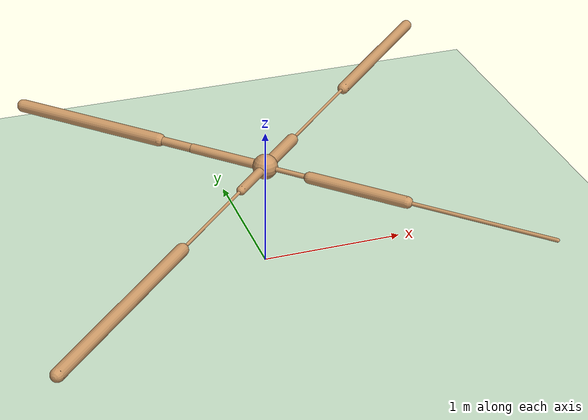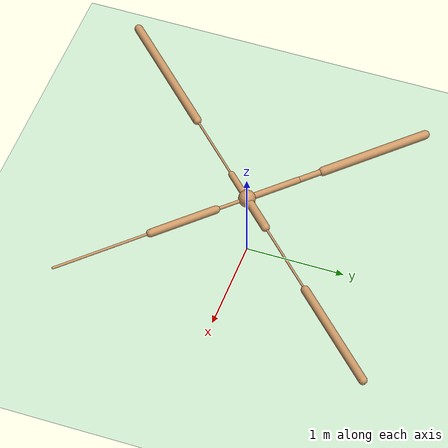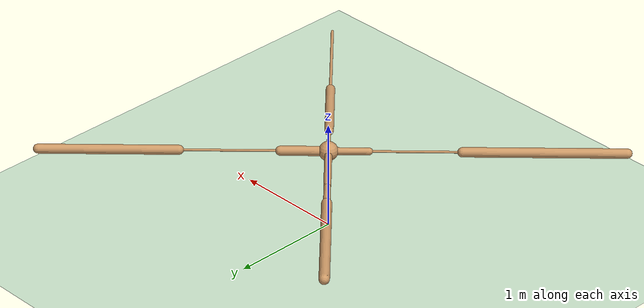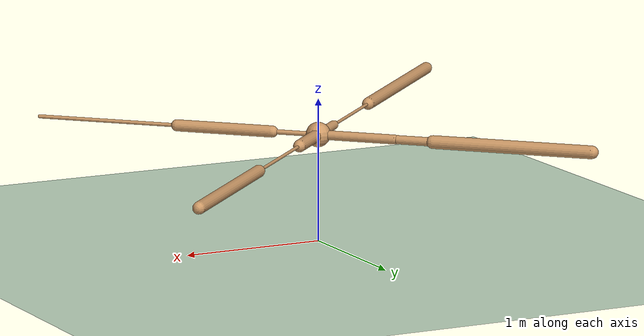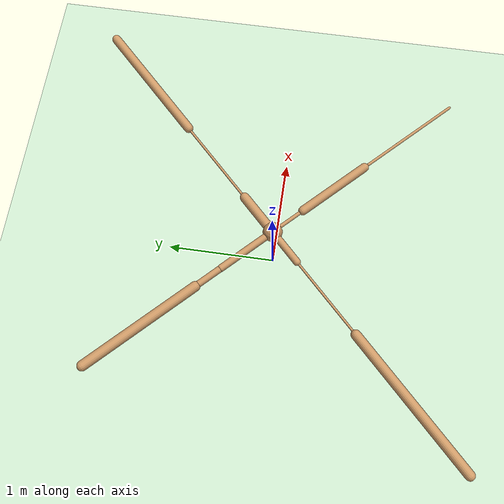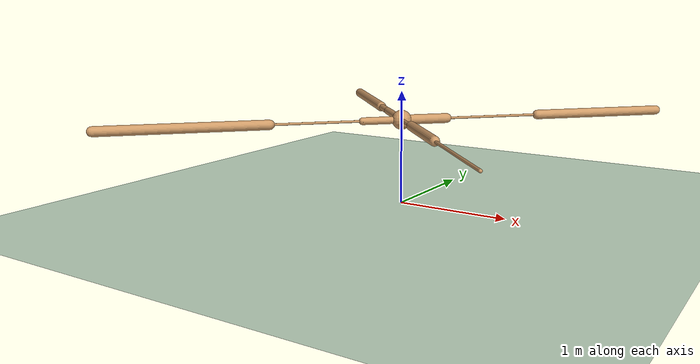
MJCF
<mujoco model="ant">
  <compiler angle="degree" coordinate="local" inertiafromgeom="true" />
  <option integrator="RK4" timestep="0.01" />
  <custom>
    <numeric data="0.0 0.0 0.55 1.0 0.0 0.0 0.0 0.0 1.0 0.0 -1.0 0.0 -1.0 0.0 1.0" name="init_qpos" />
  </custom>
  <default>
    <joint armature="1" damping="1" limited="true" />
    <geom conaffinity="0" condim="3" density="5.0" friction="1 0.5 0.5" margin="0.01" rgba="0.8 0.6 0.4 1" />
  </default>
  <asset>
    <texture builtin="gradient" height="100" rgb1="1 1 1" rgb2="0 0 0" type="skybox" width="100" />
    <texture builtin="flat" height="1278" mark="cross" markrgb="1 1 1" name="texgeom" random="0.01" rgb1="0.8 0.6 0.4" rgb2="0.8 0.6 0.4" type="cube" width="127" />
    <texture builtin="checker" height="100" name="texplane" rgb1="0 0 0" rgb2="0.8 0.8 0.8" type="2d" width="100" />
    <material name="MatPlane" reflectance="0.5" shininess="1" specular="1" texrepeat="60 60" texture="texplane" />
    <material name="geom" texture="texgeom" texuniform="true" />
  </asset>
  <worldbody>
    <light cutoff="100" diffuse="1 1 1" dir="-0 0 -1.3" directional="true" exponent="1" pos="0 0 1.3" specular=".1 .1 .1" />
    <geom conaffinity="1" condim="3" material="MatPlane" name="floor" pos="0 0 0" rgba="0.8 0.9 0.8 1" size="40 40 40" type="plane" />
    <body name="torso" pos="0 0 0.75">
      <camera name="track" mode="trackcom" pos="0 -11 5" xyaxes="1 0 0 0 0.5 1" />
      <geom name="torso_geom" pos="0 0 0" size="0.08610371500253677" type="sphere" />
      <joint armature="0" damping="0" limited="false" margin="0.01" name="root" pos="0 0 0" type="free" />
      <body name="front_left_leg" pos="0 0 0">
        <geom fromto="0 0 0 0.2900897264480591 0.2900897264480591 0" name="aux_1_geom" size="0.042759399861097336" type="capsule" />
        <body name="aux_1" pos="0.2900897264480591 0.2900897264480591 0">
          <joint axis="0 0 1" name="hip_1" pos="0.0 0.0 0.0" range="-30 30" type="hinge" />
          <geom fromto="0 0 0 0.612099289894104 0.612099289894104 0" name="left_leg_geom" size="0.010734534822404385" type="capsule" />
          <body name="left_leg_geom_aux" pos="0.612099289894104 0.612099289894104 0">
            <joint axis="-1 1 0" name="ankle_1" pos="0.0 0.0 0.0" range="30 70" type="hinge" />
            <geom fromto="0 0 0 0.8519142866134644 0.8519142866134644 0" name="left_ankle_geom" size="0.04208170995116234" type="capsule" />
          </body>
        </body>
      </body>
      <body name="front_right_leg" pos="0 0 0">
        <geom fromto="0 0 0 -0.3907579183578491 0.3907579183578491 0" name="aux_2_geom" size="0.032774418592453" type="capsule" />
        <body name="aux_2" pos="-0.3907579183578491 0.3907579183578491 0">
          <joint axis="0 0 1" name="hip_2" pos="0.0 0.0 0.0" range="-30 30" type="hinge" />
          <geom fromto="0 0 0 -0.19050750136375427 0.19050750136375427 0" name="right_leg_geom" size="0.030239172279834747" type="capsule" />
          <body name="right_leg_geom_aux" pos="-0.19050750136375427 0.19050750136375427 0">
            <joint axis="1 1 0" name="ankle_2" pos="0.0 0.0 0.0" range="-70 -30" type="hinge" />
            <geom fromto="0 0 0 -0.7937217950820923 0.7937217950820923 0" name="right_ankle_geom" size="0.04562637582421303" type="capsule" />
          </body>
        </body>
      </body>
      <body name="back_leg" pos="0 0 0">
        <geom fromto="0 0 0 -0.24564385414123535 -0.24564385414123535 0" name="aux_3_geom" size="0.03233221173286438" type="capsule" />
        <body name="aux_3" pos="-0.24564385414123535 -0.24564385414123535 0">
          <joint axis="0 0 1" name="hip_3" pos="0.0 0.0 0.0" range="-30 30" type="hinge" />
          <geom fromto="0 0 0 -0.5628647208213806 -0.5628647208213806 0" name="back_leg_geom" size="0.010516371577978134" type="capsule" />
          <body name="back_leg_geom_aux" pos="-0.5628647208213806 -0.5628647208213806 0">
            <joint axis="-1 1 0" name="ankle_3" pos="0.0 0.0 0.0" range="-70 -30" type="hinge" />
            <geom fromto="0 0 0 -0.9931515455245972 -0.9931515455245972 0" name="third_ankle_geom" size="0.04322406277060509" type="capsule" />
          </body>
        </body>
      </body>
      <body name="right_back_leg" pos="0 0 0">
        <geom fromto="0 0 0 0.23488274216651917 -0.23488274216651917 0" name="aux_4_geom" size="0.016791298985481262" type="capsule" />
        <body name="aux_4" pos="0.23488274216651917 -0.23488274216651917 0">
          <joint axis="0 0 1" name="hip_4" pos="0.0 0.0 0.0" range="-30 30" type="hinge" />
          <geom fromto="0 0 0 0.49185189604759216 -0.49185189604759216 0" name="rightback_leg_geom" size="0.04054909944534302" type="capsule" />
          <body name="rightback_leg_geom_aux" pos="0.49185189604759216 -0.49185189604759216 0">
            <joint axis="1 1 0" name="ankle_4" pos="0.0 0.0 0.0" range="30 70" type="hinge" />
            <geom fromto="0 0 0 0.7177693843841553 -0.7177693843841553 0" name="fourth_ankle_geom" size="0.013002824038267136" type="capsule" />
          </body>
        </body>
      </body>
    </body>
  </worldbody>
  <actuator>
    <motor ctrllimited="true" ctrlrange="-1.0 1.0" joint="hip_4" gear="150" />
    <motor ctrllimited="true" ctrlrange="-1.0 1.0" joint="ankle_4" gear="150" />
    <motor ctrllimited="true" ctrlrange="-1.0 1.0" joint="hip_1" gear="150" />
    <motor ctrllimited="true" ctrlrange="-1.0 1.0" joint="ankle_1" gear="150" />
    <motor ctrllimited="true" ctrlrange="-1.0 1.0" joint="hip_2" gear="150" />
    <motor ctrllimited="true" ctrlrange="-1.0 1.0" joint="ankle_2" gear="150" />
    <motor ctrllimited="true" ctrlrange="-1.0 1.0" joint="hip_3" gear="150" />
    <motor ctrllimited="true" ctrlrange="-1.0 1.0" joint="ankle_3" gear="150" />
  </actuator>
</mujoco>
